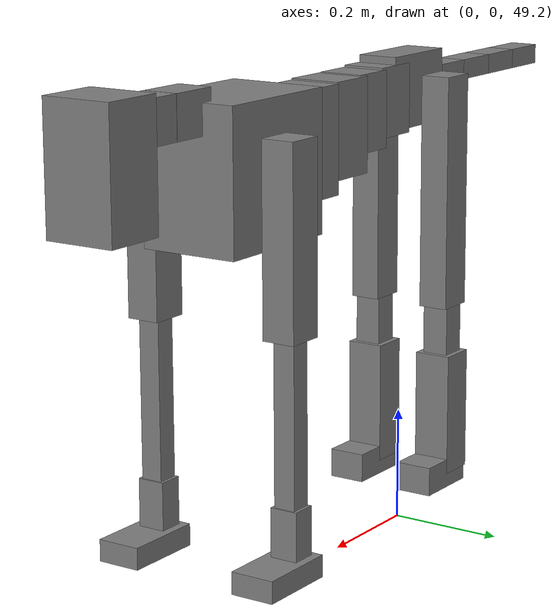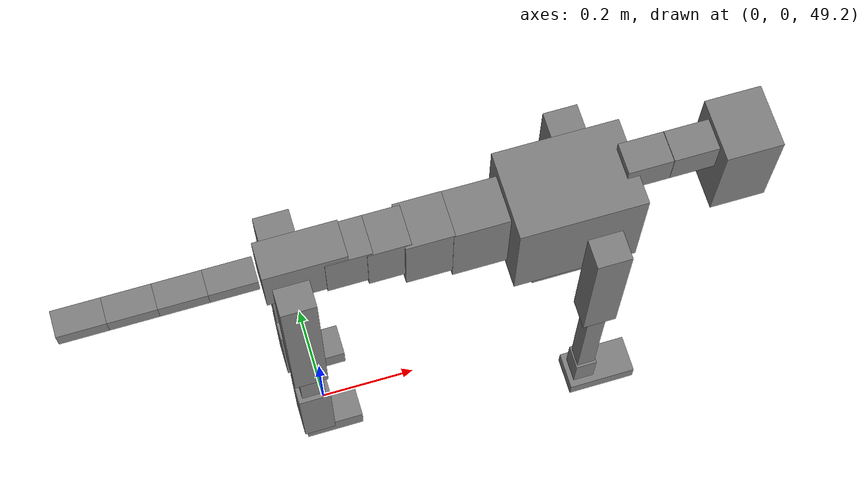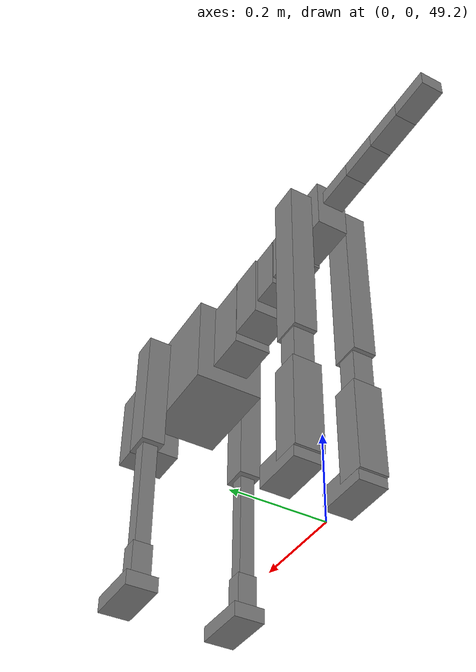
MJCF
<mujoco model="dog">

    <default>
        <joint armature="0.02" stiffness="1" damping="0.2" limited="true"/>
        <geom condim="3" friction="1 0.05 0.05" margin="0.01"/>
        <motor ctrllimited="true" ctrlrange="-1.0 1.0" forcelimited="true" gear="50"/>
    </default>

    <compiler inertiafromgeom="true" angle="radian"/>

    <option timestep="0.016" iterations="50" tolerance="1e-10" solver="Newton" jacobian="dense" cone="pyramidal"/>

    <size nconmax="20000" njmax="60000" nstack="5000000"/>
    <visual>
        <map force="0.1" zfar="30"/>
        <rgba haze="0.15 0.25 0.35 1"/>
        <quality shadowsize="2048"/>
        <global offwidth="800" offheight="800"/>
    </visual>

    <asset>
        <texture type="skybox" builtin="gradient" rgb1="0.3 0.5 0.7" rgb2="0 0 0" width="512" height="512"/>
        <texture name="texplane" type="2d" builtin="checker" rgb1=".2 .3 .4" rgb2=".1 0.15 0.2" width="512" height="512"
                 mark="cross" markrgb=".8 .8 .8"/>
        <texture name="texgeom" type="cube" builtin="flat" mark="cross" width="127" height="1278" rgb1="0.8 0.6 0.4"
                 rgb2="0.8 0.6 0.4" markrgb="1 1 1" random="0.01"/>

        <material name="matplane" reflectance="0.3" texture="texplane" texrepeat="1 1" texuniform="true"/>
        <material name="matgeom" texture="texgeom" texuniform="true" rgba="0.8 0.6 .4 1"/>
    </asset>

    <worldbody>
        <geom name="floor" pos="0 0 0" size="0 0 .25" type="plane" material="matplane" condim="3"/>

        <light directional="false" diffuse=".2 .2 .2" specular="0 0 0" pos="0 0 5" dir="0 0 -1" castshadow="false"/>
        <light mode="targetbodycom" target="torso" directional="false" diffuse=".8 .8 .8" specular="0.3 0.3 0.3"
               pos="0 0 4.0" dir="0 0 -1"/>

        <body name="root" pos="0 0 50">
            <freejoint name="root_1"/>
            <geom type="box" pos="0 0 -0.02" size="0.0774  0.0358  0.063" density="2030"/>

            <body name="spine1" pos="0.054 0 0">
                <joint name="spine1_y" axis="0 1 0" range="0 0.7" limited="true"/>
                <geom type="box" pos="0.02375 0 -0.03" size="0.04375  0.0375  0.05985" density="2030"/>

                <body name="spine2" pos="0.0612 0 0">
                    <joint name="spine2_y" axis="0 1 0" range="-0.15 0.15" limited="true"/>
                    <geom type="box" pos="0.03555  0  -0.04" size="0.04055  0.039  0.06615" density="2030"/>

                    <body name="spine3" pos="0.0730 0 0">
                        <joint name="spine3_y" axis="0 1 0" range="-0.15 0.15" limited="true"/>
                        <geom type="box" pos="0.03555  0  -0.057" size="0.04555  0.0445  0.081" density="2030"/>

                        <body name="spine4" pos="0.0780 0 0">
                            <joint name="spine4_y" axis="0 1 0" range="-0.15 0.15" limited="true"/>
                            <geom type="box" pos="0.05265  0  -0.07" size="0.05265  0.045  0.09135" density="2030"/>

                            <body name="torso" pos="0.1082 0 0">
                                <joint name="torso_y" axis="0 1 0" range="-0.15 0.15" limited="true"/>
                                <geom type="box" pos="0.11925  0  -0.085" size="0.11925  0.085  0.11745"
                                      density="2030"/>

                                <body name="neck1" pos="0.2160  0   0.0180">
                                    <joint name="neck1_y" axis="0 1 0" range="-1.2  -1" limited="true"/>
                                    <geom type="box" pos="0.0423  0  0" size="0.0423  0.03  0.036" density="2325"/>

                                    <body name="neck2" pos="0.0853  0  0">
                                        <joint name="neck2_y" axis="0 1 0" range="0.1  0" limited="true"/>
                                        <geom type="box" pos="0.0423  0  0" size="0.0423  0.03  0.036" density="2325"/>

                                        <body name="head" pos="0.0853  0  0">
                                            <joint name="head_y" axis="0 1 0" range="-0.3  -0.2" limited="true"/>
                                            <geom type="box" pos="0.0531  0  -0.055" size="0.0531  0.06  0.1044"
                                                  density="4030"/>

                                        </body>
                                    </body>
                                </body>

                                <body name="front_shoulder" pos="0.156  0   -0.0480">
                                    <joint name="front_shoulder_y" axis="0 1 0" range="-1 1.5" limited="true"/>
                                    <geom type="box" pos="0 0.13 -0.1293" size="0.0330  0.0282  0.1560" density="1158"/>
                                    <geom type="box" pos="0 -0.13 -0.1293" size="0.0330  0.0282  0.1560"
                                          density="1158"/>

                                    <body name="front_elbow" pos="0  0  -0.2587">
                                        <joint name="front_elbow_y" axis="0 1 0" range="-2 0" limited="true"/>
                                        <geom type="box" pos="0 0.13 -0.1545" size="0.0183  0.0187  0.1545"
                                              density="1081"/>
                                        <geom type="box" pos="0 -0.13 -0.1545" size="0.0183  0.0187  0.1545"
                                              density="1081"/>

                                        <body name="front_wrist" pos="0  0  -0.3090">
                                            <joint name="front_wrist_y" axis="0 1 0" range="-0.2 0" limited="true"/>
                                            <geom type="box" pos="0 0.13 -0.0416" size="0.0215  0.0238  0.0548"
                                                  density="1664"/>
                                            <geom type="box" pos="0 -0.13 -0.0416" size="0.0215  0.0238  0.0548"
                                                  density="1664"/>

                                            <body name="front_finger_end" pos="0  0  -0.0833">
                                                <joint name="front_finger_y" axis="0 1 0" range="-0.4 1"
                                                       limited="true"/>
                                                <geom type="box" pos="0.0378  0.13  -0.0036"
                                                      size="0.0693  0.0378  0.0186" density="1515"/>
                                                <geom type="box" pos="0.0378  -0.13  -0.0036"
                                                      size="0.0693  0.0378  0.0186" density="1515"/>

                                            </body>

                                        </body>
                                    </body>
                                </body>

                            </body>
                        </body>
                    </body>
                </body>
            </body>

            <body name="back_hip" pos="-0.03 0 -0.018">
                <joint name="back_hip_y" axis="0 1 0" range="-1.5 0.3" limited="true"/>
                <geom type="box" pos="0 0.07 -0.1804" size="0.0334  0.0262  0.2032" density="1154"/>
                <geom type="box" pos="0 -0.07 -0.1804" size="0.0334  0.0262  0.2032" density="1154"/>

                <body name="back_knee" pos="0  0  -0.3608">
                    <joint name="back_knee_y" axis="0 1 0" range="0 2.8" limited="true"/>
                    <geom type="box" pos="0 0.07 -0.0596" size="0.0236  0.0232  0.0752" density="1227"/>
                    <geom type="box" pos="0 -0.07 -0.0596" size="0.0236  0.0232  0.0752" density="1227"/>

                    <body name="back_ankle" pos="0  0  -0.1192">
                        <joint name="back_ankle_y" axis="0 1 0" range="-2.2 0" limited="true"/>
                        <geom type="box" pos="0 0.07 -0.0958" size="0.0326  0.0326  0.1071" density="1284"/>
                        <geom type="box" pos="0 -0.07 -0.0958" size="0.0326  0.0326  0.1071" density="1284"/>

                        <body name="back_toe_end" pos="0  0  -0.1916">
                            <joint name="back_toe_y" axis="0 1 0" range="-0.4 1" limited="true"/>
                            <geom type="box" pos="0.0325  0.07  -0.0104" size="0.0596  0.0325  0.0254" density="1515"/>
                            <geom type="box" pos="0.0325  -0.07  -0.0104" size="0.0596  0.0325  0.0254" density="1515"/>

                        </body>
                    </body>
                </body>
            </body>

            <body name="tail1" pos="-0.074 0 -0.006">
                <joint name="tail1_y" axis="0 1 0" range="-0.2 0.2" limited="true"/>
                <geom type="box" pos="-0.0536  0  0" size="0.045  0.025  0.0175" density="1587"/>

                <body name="tail2" pos="-0.09 0 0">
                    <joint name="tail2_y" axis="0 1 0" range="-0.2 0.2" limited="true"/>
                    <geom type="box" pos="-0.0536  0  0" size="0.045  0.025  0.0175" density="1587"/>

                    <body name="tail3" pos="-0.09 0 0">
                        <joint name="tail3_y" axis="0 1 0" range="-0.2 0.2" limited="true"/>
                        <geom type="box" pos="-0.0536  0  0" size="0.045  0.025  0.0175" density="1587"/>

                        <body name="tail4" pos="-0.09 0 0">
                            <joint name="tail4_y" axis="0 1 0" range="-0.2 0.2" limited="true"/>
                            <geom type="box" pos="-0.0536  0  0" size="0.045  0.025  0.0175" density="1587"/>

                        </body>
                    </body>
                </body>
            </body>
        </body>
    </worldbody>

    <actuator>
        <motor joint="spine1_y" forcerange="-150 150     "/>
        <motor joint="spine2_y" forcerange="-150 150     "/>
        <motor joint="spine3_y" forcerange="-150 150     "/>
        <motor joint="spine4_y" forcerange="-150 150     "/>
        <motor joint="torso_y" forcerange="-150 150     "/>
        <motor joint="neck1_y" forcerange="-100 100       "/>
        <motor joint="neck2_y" forcerange="-100 100       "/>
        <motor joint="head_y" forcerange="-150 150       "/>
        <motor joint="front_shoulder_y" forcerange="-186.94 101.33"/>
        <motor joint="front_elbow_y" forcerange="-133.14 103.00"/>
        <motor joint="front_wrist_y" forcerange="-135.35 55.34"/>
        <motor joint="front_finger_y" forcerange="-63.51 98.10"/>
        <motor joint="back_hip_y" forcerange="-294.45 254.83"/>
        <motor joint="back_knee_y" forcerange="-325.12 213.02"/>
        <motor joint="back_angle_y" forcerange="-245.46 176.87"/>
        <motor joint="back_toe_y" forcerange="-105.38 74.77"/>
        <motor joint="tail1_y" forcerange="-50 50     "/>
        <motor joint="tail2_y" forcerange="-50 50     "/>
        <motor joint="tail3_y" forcerange="-50 50     "/>
        <motor joint="tail4_y" forcerange="-50 50     "/>
    </actuator>
</mujoco>
